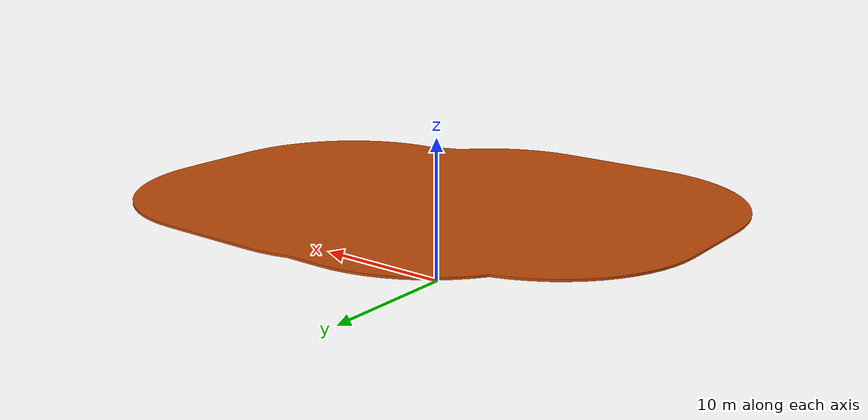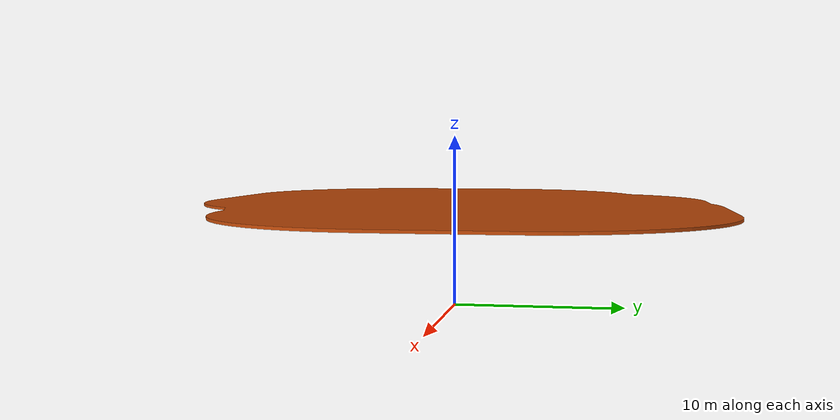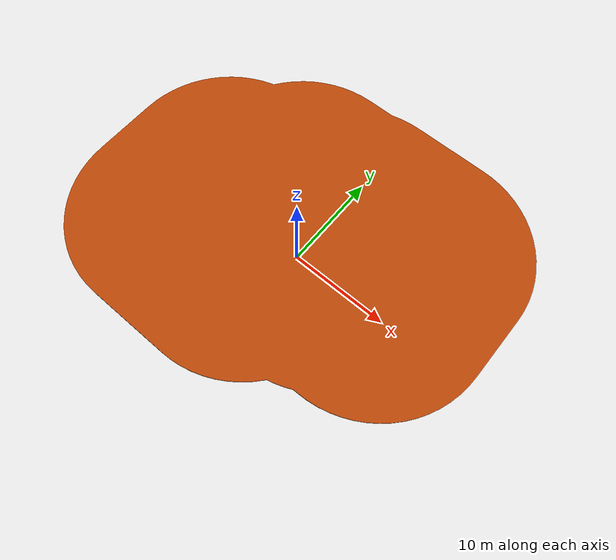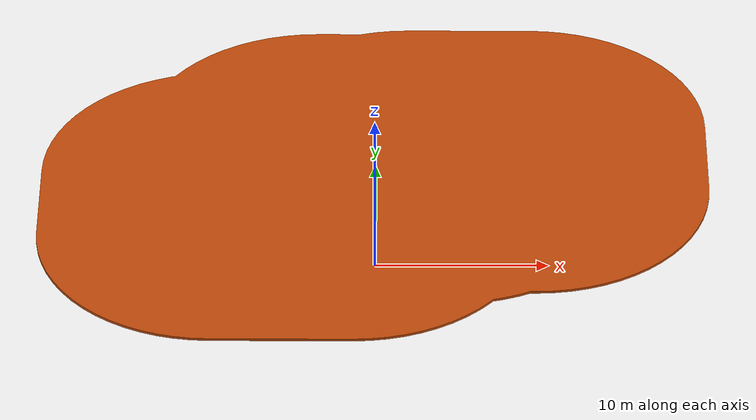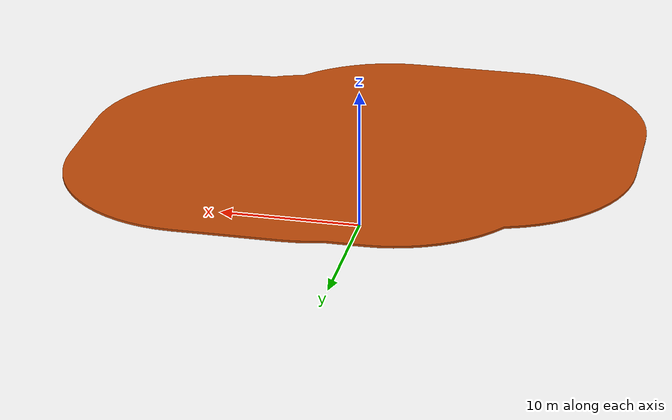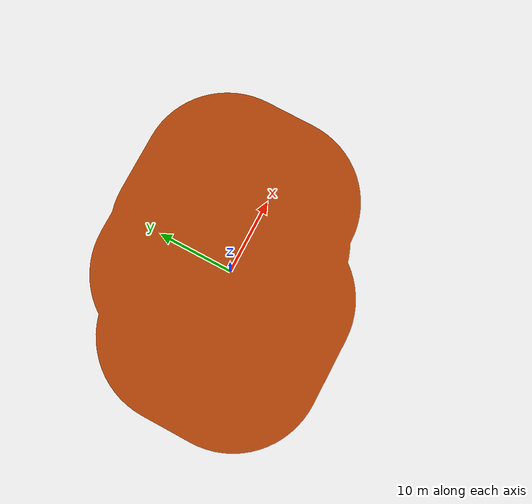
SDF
<?xml version="1.0" ?>
<sdf version="1.6">
  <model name="ceiling_3">
    <pose frame="">0 0 6 0 -0 0</pose>
    <static>1</static>
    <self_collide>0</self_collide>
    <allow_auto_disable>0</allow_auto_disable>
    <link name="mesh">
      <kinematic>0</kinematic>
      <gravity>1</gravity>
      <self_collide>0</self_collide>
      <collision name="collision">
        <geometry>
          <mesh>
            <uri>model://ceiling_3/meshes/pAPyqPrUWV.stl</uri>
            <scale>1 1 1</scale>
          </mesh>
        </geometry>
        <pose frame="">-2.0783 -6.32172 -0.075 0 -0 0</pose>
        <max_contacts>20</max_contacts>
      </collision>
      <visual name="visual">
        <geometry>
          <mesh>
            <uri>model://ceiling_3/meshes/oiZjDsUXmE.stl</uri>
            <scale>1 1 1</scale>
          </mesh>
        </geometry>
        <material>
          <ambient>0.756863 0.290196 0.0352941 1</ambient>
          <diffuse>0.7568627450980392 0.2901960784313726 0.03529411764705882 1</diffuse>
        </material>
        <pose frame="">-2.0783 -6.32172 -0.075 0 -0 0</pose>
        <cast_shadows>1</cast_shadows>
        <transparency>0.0</transparency>
      </visual>
      <pose frame="">0 0 0 0 -0 0</pose>
    </link>
  </model>
</sdf>
